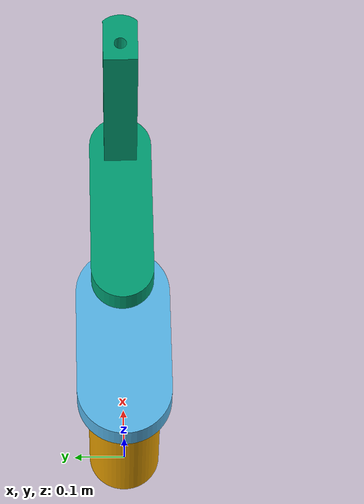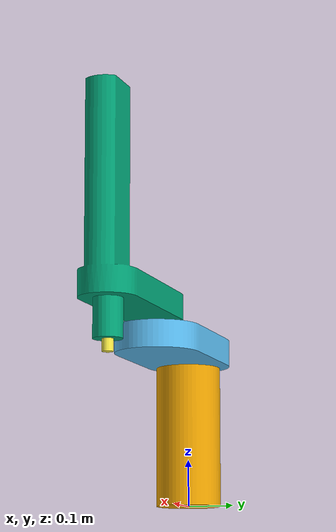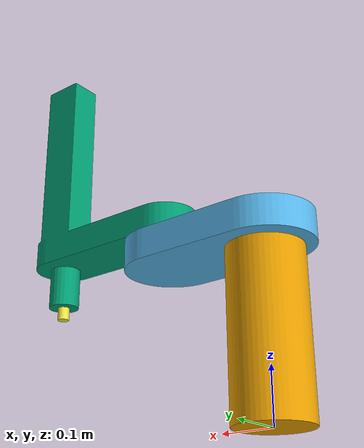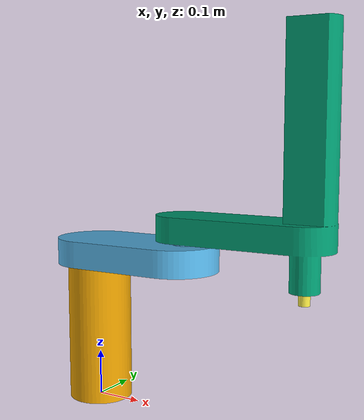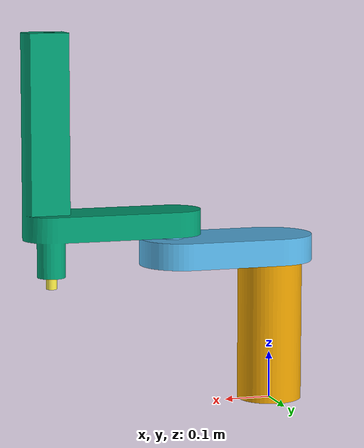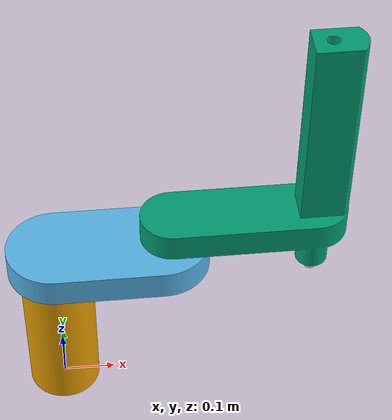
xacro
<?xml version="1.0" ?>
<robot name="SCARA_EIA_Tesis" xmlns:xacro="http://www.ros.org/wiki/xacro">

<link name="base_link">
  <visual>
    <origin xyz="0 0 0" rpy="0 0 0"/>
    <geometry>
      <mesh filename="file://$(find SCARA_EIA_Tesis_description)/meshes/base_link.stl" scale="0.001 0.001 0.001"/>
    </geometry>
  </visual>
  <collision>
    <origin xyz="0 0 0" rpy="0 0 0"/>
    <geometry>
      <mesh filename="file://$(find SCARA_EIA_Tesis_description)/meshes/base_link.stl" scale="0.001 0.001 0.001"/>
    </geometry>
  </collision>
</link>

<link name="Shoulder_1">
  <visual>
    <origin xyz="0.0 0.0 -0.304" rpy="0 0 0"/>
    <geometry>
      <mesh filename="file://$(find SCARA_EIA_Tesis_description)/meshes/Shoulder_1.stl" scale="0.001 0.001 0.001"/>
    </geometry>
  </visual>
  <collision>
    <origin xyz="0.0 0.0 -0.304" rpy="0 0 0"/>
    <geometry>
      <mesh filename="file://$(find SCARA_EIA_Tesis_description)/meshes/Shoulder_1.stl" scale="0.001 0.001 0.001"/>
    </geometry>
  </collision>
</link>

<link name="Elbow_1">
  <visual>
    <origin xyz="-0.22 -0.0 -0.36975" rpy="0 0 0"/>
    <geometry>
      <mesh filename="file://$(find SCARA_EIA_Tesis_description)/meshes/Elbow_1.stl" scale="0.001 0.001 0.001"/>
    </geometry>
  </visual>
  <collision>
    <origin xyz="-0.22 -0.0 -0.36975" rpy="0 0 0"/>
    <geometry>
      <mesh filename="file://$(find SCARA_EIA_Tesis_description)/meshes/Elbow_1.stl" scale="0.001 0.001 0.001"/>
    </geometry>
  </collision>
</link>

<link name="FinalEfector_1">
  <visual>
    <origin xyz="-0.485 -0.0 -0.80075" rpy="0 0 0"/>
    <geometry>
      <mesh filename="file://$(find SCARA_EIA_Tesis_description)/meshes/FinalEfector_1.stl" scale="0.001 0.001 0.001"/>
    </geometry>
  </visual>
  <collision>
    <origin xyz="-0.485 -0.0 -0.80075" rpy="0 0 0"/>
    <geometry>
      <mesh filename="file://$(find SCARA_EIA_Tesis_description)/meshes/FinalEfector_1.stl" scale="0.001 0.001 0.001"/>
    </geometry>
  </collision>
</link>

<joint name="rev1" type="revolute">
  <origin xyz="0.0 0.0 0.304" rpy="0 0 0"/>
  <parent link="base_link"/>
  <child link="Shoulder_1"/>
  <axis xyz="0.0 0.0 1.0"/>
  <limit upper="1.0821" lower="-1.0821" effort="100.0" velocity="100.0"/>
</joint>

<joint name="rev2" type="revolute">
  <origin xyz="0.22 0.0 0.06575" rpy="0 0 0"/>
  <parent link="Shoulder_1"/>
  <child link="Elbow_1"/>
  <axis xyz="0.0 0.0 1.0"/>
  <limit upper="1.9024" lower="-1.9024" effort="100.0" velocity="100.0"/>
</joint>

<joint name="prismatic1" type="prismatic">
  <origin xyz="0.265 0.0 0.431" rpy="0 0 0"/>
  <parent link="Elbow_1"/>
  <child link="FinalEfector_1"/>
  <axis xyz="0.0 0.0 1.0"/>
  <limit upper="0.0" lower="-0.257" effort="100.0" velocity="100.0"/>
</joint>

</robot>
